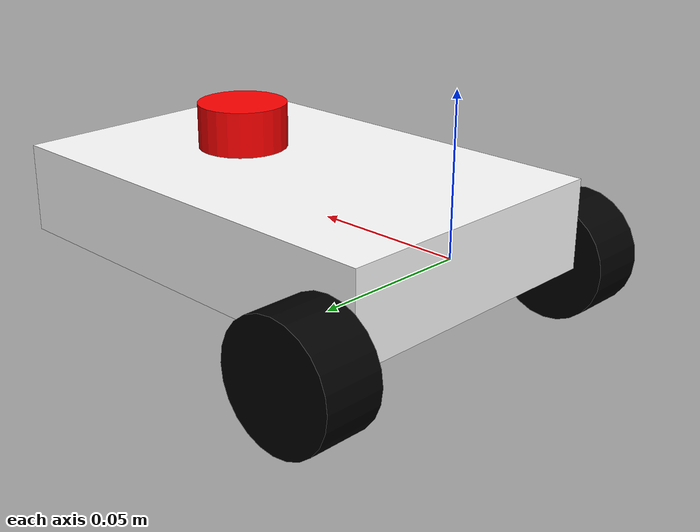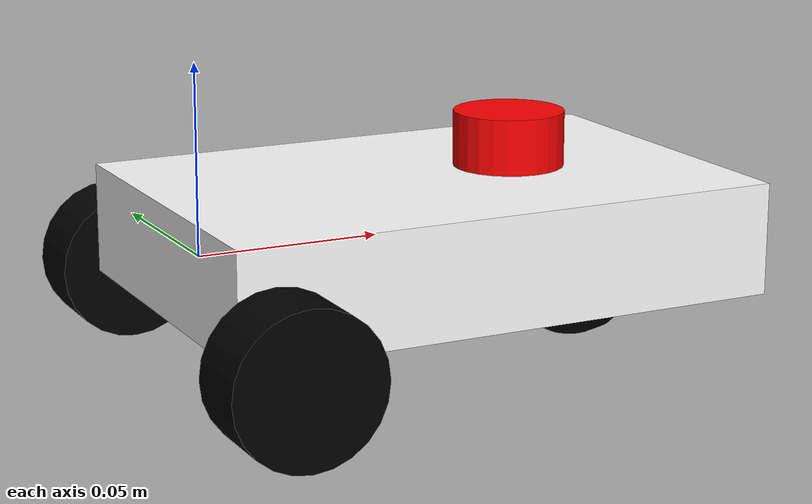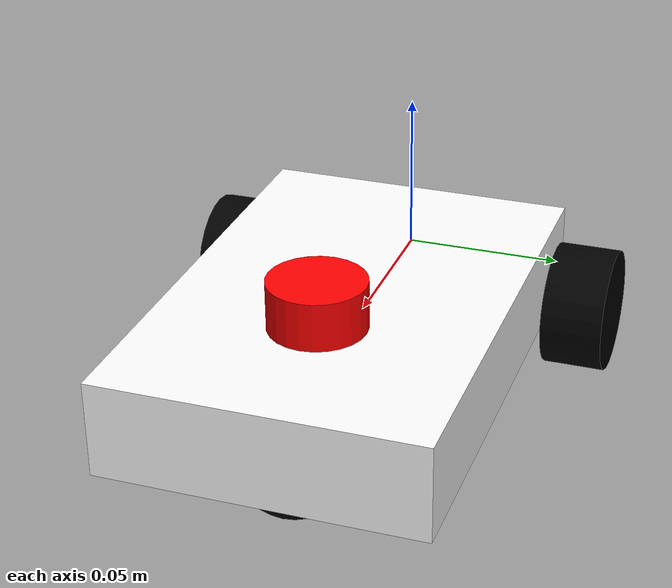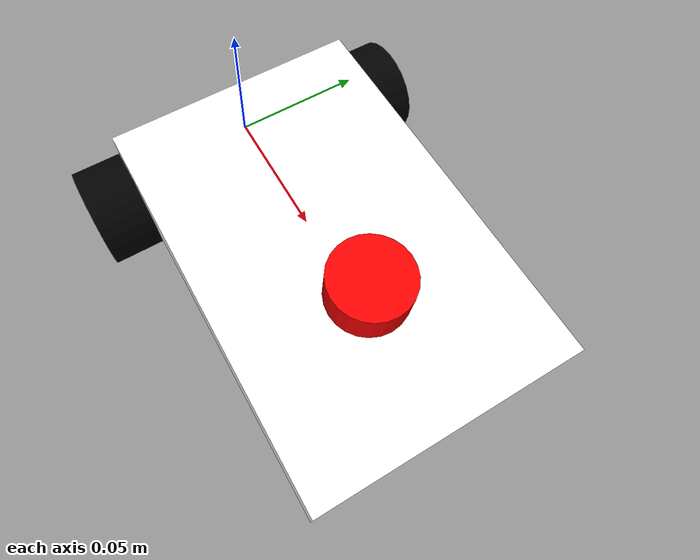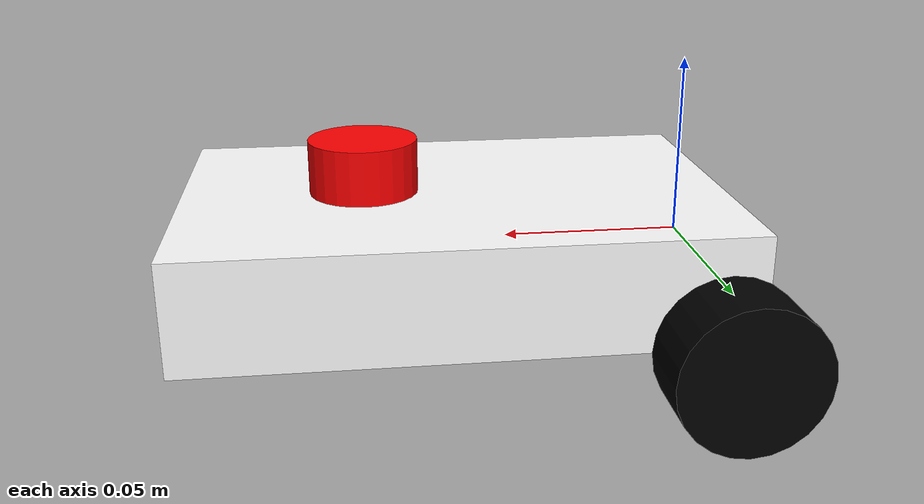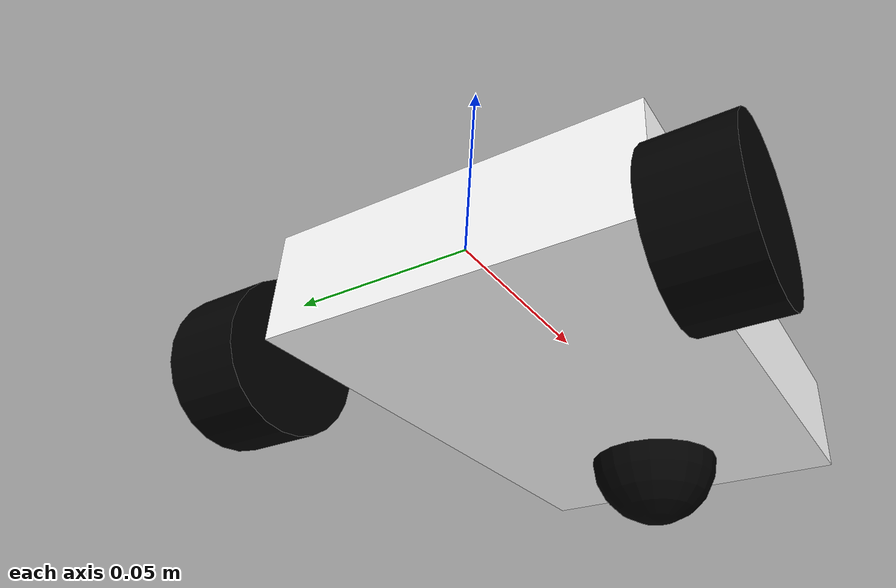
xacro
<?xml version="1.1" encoding="UTF-8"?>
<robot name="Ollie" xmlns:xacro="http://www.ros.org/wiki/xacro">

    <xacro:include filename="robot_core.xacro"/>
    <xacro:include filename="lidar.xacro"/>
    <xacro:include filename="ros2_control.xacro"/>

</robot>

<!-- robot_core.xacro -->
<robot xmlns:xacro="http://www.ros.org/wiki/xacro">
    <xacro:include filename="inertial_macros.xacro"/>

    <!-- PROPERTIES -->
    <xacro:property name="chassis_length" value="0.15"/>
    <xacro:property name="chassis_width" value="0.10"/>
    <xacro:property name="chassis_height" value="0.03"/>
    <xacro:property name="wheel_mass" value="0.015"/>
    <xacro:property name="wheel_radius" value="0.02"/>
    <xacro:property name="wheel_thickness" value="0.02"/>
    <xacro:property name="wheel_offset_y" value="0.06"/>
    <xacro:property name="wheel_offset_z" value="-0.015"/>
    <xacro:property name="caster_radius" value="0.01"/>
    <xacro:property name="caster_wheel_mass" value="0.02"/>
    <xacro:property name="caster_wheel_offset_x" value="0.11"/>

    <material name="white">
        <color rgba="1 1 1 1" />
    </material>

    <material name="orange">
        <color rgba="1 0.3 0.1 1"/>
    </material>

    <material name="blue">
        <color rgba="0.2 0.2 1 1"/>
    </material>

    <material name="black">
        <color rgba="0 0 0 1"/>
    </material>

    <material name="red">
        <color rgba="1 0 0 1"/>
    </material>

    <!--  BASE LINK -->
    <link name="base_link"></link>

    <!-- CHASSIS LINK -->
    <joint name="chassis_joint" type="fixed">
        <parent link="base_link"/>
        <child link="chassis_link"/>
        <origin xyz="-0.01 0.0 0.0" rpy="0.0 0.0 0.0"/>
    </joint>

    <link name="chassis_link">
        <visual>
            <origin xyz="${chassis_length/2} 0.0 0.0" rpy="0.0 0.0 0.0"/>
            <geometry>
                <box size="${chassis_length} ${chassis_width} ${chassis_height}"/>
            </geometry>
            <material name="white"/>
        </visual>
        <collision>
            <origin xyz="${chassis_length/2} 0.0 0.0" rpy="0.0 0.0 0.0"/>
            <geometry>
                <box size="${chassis_length} ${chassis_width} ${chassis_height}"/>
            </geometry>
        </collision>
        <xacro:inertial_box mass="0.25" x="${chassis_length}" y="${chassis_width}" z="${chassis_height}">
            <origin xyz="${chassis_length/2} 0 ${chassis_height/2}" rpy="0 0 0"/>
        </xacro:inertial_box>
    </link>

    <gazebo reference="chassis_link">
        <material>Gazebo/White</material>
    </gazebo>

    <!-- WHEELS -->
    <joint name="left_wheel_joint" type="continuous">
        <parent link="base_link"/>
        <child link="left_wheel_link"/>
        <origin xyz="0.0 ${wheel_offset_y} ${wheel_offset_z}" rpy="-${pi/2} 0.0 0.0"/>
        <axis xyz="0 0 1"/>
    </joint>

    <link name="left_wheel_link">
        <visual>
            <geometry>
                <cylinder radius="${wheel_radius}" length="${wheel_thickness}"/>
            </geometry>
            <material name="black"/>
        </visual>
        <collision>
            <geometry>
                <cylinder radius="${wheel_radius}" length="${wheel_thickness}"/>
            </geometry>
        </collision>
        <xacro:inertial_cylinder mass="${wheel_mass}" length="${wheel_thickness}" radius="${wheel_radius}">
            <origin xyz="0 0 0" rpy="0 0 0"/>
        </xacro:inertial_cylinder>
    </link>

    <gazebo reference="left_wheel_link">
        <material>Gazebo/Black</material>
    </gazebo>

    <joint name="right_wheel_joint" type="continuous">
        <parent link="base_link"/>
        <child link="right_wheel_link"/>
        <origin xyz="0.0 ${-wheel_offset_y} ${wheel_offset_z}" rpy="${pi/2} 0.0 0.0"/>
        <axis xyz="0 0 -1"/>
    </joint>

    <link name="right_wheel_link">
        <visual>
            <geometry>
                <cylinder radius="${wheel_radius}" length="${wheel_thickness}"/>
            </geometry>
            <material name="black"/>
        </visual>
        <collision>
            <geometry>
                <cylinder radius="${wheel_radius}" length="${wheel_thickness}"/>
            </geometry>
        </collision>
        <xacro:inertial_cylinder mass="${wheel_mass}" length="${wheel_thickness}" radius="${wheel_radius}">
            <origin xyz="0 0 0" rpy="0 0 0"/>
        </xacro:inertial_cylinder>
    </link>

    <gazebo reference="right_wheel_link">
        <material>Gazebo/Black</material>
    </gazebo>

    <!-- CASTER WHEEL -->
    <joint name="caster_wheel_joint" type="fixed">
        <parent link="base_link"/>
        <child link="caster_wheel_link"/>
        <origin xyz="${caster_wheel_offset_x} 0 ${wheel_offset_z}"/>
    </joint>

    <link name="caster_wheel_link">
        <visual>
            <geometry>
                <sphere radius="${wheel_radius}"/>
            </geometry>
            <material name="black"/>
        </visual>
        <collision>
            <geometry>
                <sphere radius="${wheel_radius}"/>
            </geometry>
        </collision>
        <xacro:inertial_sphere mass="${caster_wheel_mass}" radius="${wheel_radius}">
            <origin xyz="0 0 0" rpy="0 0 0"/>
        </xacro:inertial_sphere>
    </link>

    <gazebo reference="caster_wheel_link">
        <material>Gazebo/Black</material>
        <mu1>0.0001</mu1>
        <mu2>0.0002</mu2>
    </gazebo>

</robot>

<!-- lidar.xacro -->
<robot xmlns:xacro="http://www.ros.org/wiki/xacro">

    <joint name="laser_joint" type="fixed">
        <parent link="chassis_link"/>
        <child link="laser_link"/>
        <origin xyz="0.1 0.0 0.02" rpy="0.0 0.0 0.0"/>
    </joint>

    <link name="laser_link">
        <visual>
            <geometry>
                <cylinder radius="0.015" length="0.02"/>
            </geometry>
            <material name="red"/>
        </visual>
        <collision>
            <geometry>
                <cylinder radius="0.015" length="0.04"/>
            </geometry>
        </collision>
        <xacro:inertial_cylinder mass="0.15" length="0.04" radius="0.015">
            <origin xyz="0 0 0" rpy="0 0 0"/>
        </xacro:inertial_cylinder>
    </link>

    <gazebo reference="laser_link">
        <material>Gazebo/Red</material>

        <sensor name="laser" type="ray">
            <pose> 0 0 0 0 0 0 </pose>
            <visualize>true</visualize>
            <update_rate>10</update_rate>
            <ray>
                <scan>
                    <horizontal>
                        <samples>360</samples>
                        <min_angle>-3.14</min_angle>
                        <max_angle>3.14</max_angle>
                    </horizontal>
                </scan>
                <range>
                    <min>0.3</min>
                    <max>12</max>
                </range>
            </ray>
            <plugin name="laser_controller" filename="libgazebo_ros_ray_sensor.so">
                <ros>
                    <argument>~/out:=scan</argument>
                </ros>
                <output_type>sensor_msgs/LaserScan</output_type>
                <frame_name>laser_frame</frame_name>
            </plugin>
        </sensor>

    </gazebo>

</robot>
